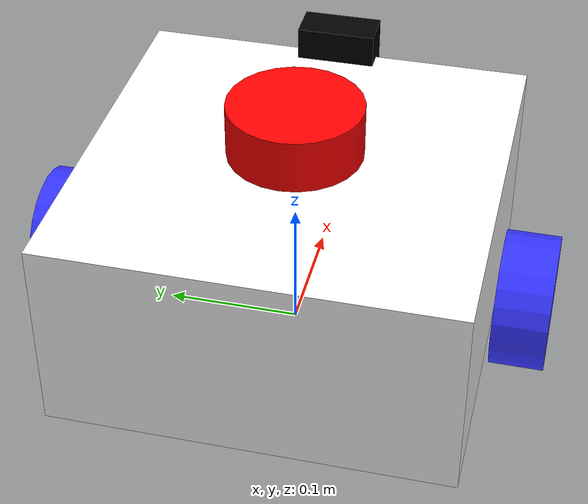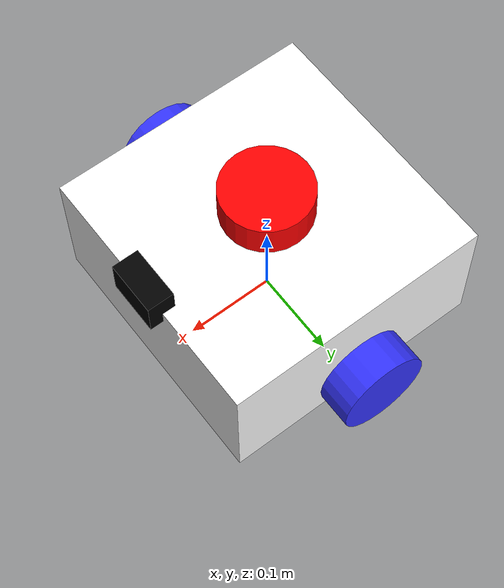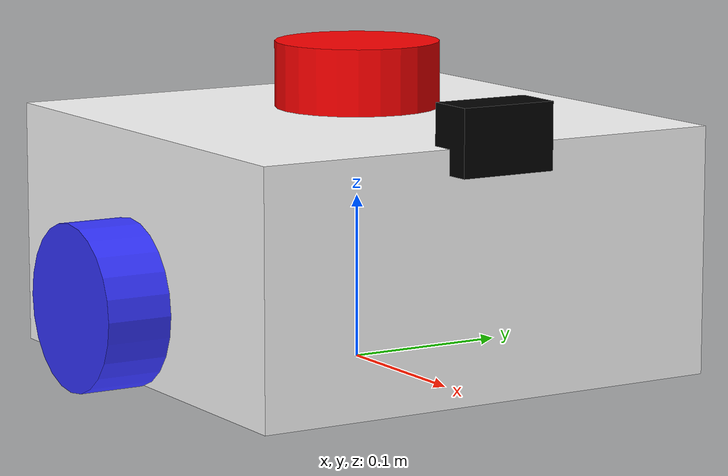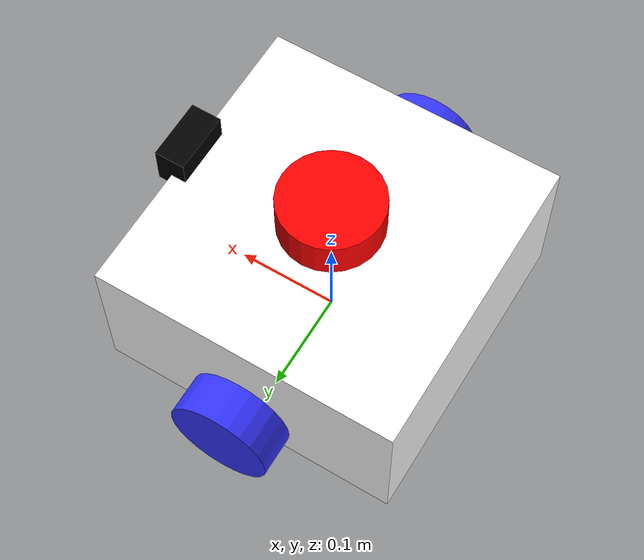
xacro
<?xml version="1.0"?>
<robot xmlns:xacro="http://www.ros.org/wiki/xacro"  name="robot">

    <xacro:include filename="robot_core.xacro"/>
    <xacro:include filename="gazebo_control.xacro" />

    <xacro:include filename="lidar.xacro" />
    <xacro:include filename="depth_camera.xacro" />

</robot>

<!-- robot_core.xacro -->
<robot xmlns:xacro="http://www.ros.org/wiki/xacro">

  <!-- Materials -->
  <material name="white"><color rgba="1 1 1 1"/></material>
  <material name="blue"><color rgba="0.2 0.2 1 1"/></material>
  <material name="black"><color rgba="0 0 0 1"/></material>

  <!-- Base -->
  <link name="base_link"/>

  <!-- BASE_FOOTPRINT LINK -->

    <joint name="base_footprint_joint" type="fixed">
        <parent link="base_link"/>
        <child link="base_footprint"/>
        <origin xyz="0 0 0.3" rpy="0 0 0"/>
    </joint>

    <link name="base_footprint">
    </link>

  <!-- Chassis -->
  <joint name="chassis_joint" type="fixed">
    <parent link="base_link"/>
    <child link="chassis"/>
    <origin xyz="0 0 0.075"/>
  </joint>

  <link name="chassis">
    <visual>
      <geometry><box size="0.3 0.3 0.15"/></geometry>
      <material name="white"/>
    </visual>
    <collision>
      <geometry><box size="0.3 0.3 0.15"/></geometry>
    </collision>
    <inertial>
      <mass value="1.0"/>
      <inertia ixx="0.02" ixy="0" ixz="0"
               iyy="0.02" iyz="0"
               izz="0.02"/>
    </inertial>
  </link>

  <!-- Left wheel -->
  <joint name="left_wheel_joint" type="continuous">
    <parent link="base_link"/>
    <child link="left_wheel"/>
    <origin xyz="0 0.175 0.05" rpy="1.5708 0 0"/>
    <axis xyz="0 0 1"/>
  </joint>

  <link name="left_wheel">
    <visual>
      <geometry><cylinder radius="0.05" length="0.04"/></geometry>
      <material name="blue"/>
    </visual>
    <collision>
      <geometry><cylinder radius="0.05" length="0.04"/></geometry>
    </collision>
    <inertial>
      <mass value="0.1"/>
      <inertia ixx="0.0002" ixy="0" ixz="0"
               iyy="0.0002" iyz="0"
               izz="0.0002"/>
    </inertial>
  </link>

  <!-- Right wheel -->
  <joint name="right_wheel_joint" type="continuous">
    <parent link="base_link"/>
    <child link="right_wheel"/>
    <origin xyz="0 -0.175 0.05" rpy="-1.5708 0 0"/>
    <axis xyz="0 0 1"/>
  </joint>

  <link name="right_wheel">
    <visual>
      <geometry><cylinder radius="0.05" length="0.04"/></geometry>
      <material name="blue"/>
    </visual>
    <collision>
      <geometry><cylinder radius="0.05" length="0.04"/></geometry>
    </collision>
    <inertial>
      <mass value="0.1"/>
      <inertia ixx="0.0002" ixy="0" ixz="0"
               iyy="0.0002" iyz="0"
               izz="0.0002"/>
    </inertial>
  </link>

  <!-- Gazebo Classic Diff Drive Plugin -->
  <gazebo>
    <plugin name="diff_drive" filename="libgazebo_ros_diff_drive.so">
        <update_rate>50</update_rate>
        <left_joint>left_wheel_joint</left_joint>
        <right_joint>right_wheel_joint</right_joint>
        <wheel_separation>0.35</wheel_separation>
        <wheel_diameter>0.10</wheel_diameter>
        <max_wheel_torque>20</max_wheel_torque>
        <command_topic>cmd_vel</command_topic>
        <publish_odom>true</publish_odom>
        <publish_odom_tf>true</publish_odom_tf>
        <publish_wheel_tf>true</publish_wheel_tf>
        <odometry_topic>odom</odometry_topic>
        <odometry_frame>odom</odometry_frame>
        <robot_base_frame>base_link</robot_base_frame>
    </plugin>
  </gazebo>

  <!-- Gazebo properties for chassis -->
  <gazebo reference="chassis">
      <material>Gazebo/White</material>
      <mu1>0.2</mu1>
      <mu2>0.2</mu2>
  </gazebo>

  <!-- Gazebo properties for left wheel -->
  <gazebo reference="left_wheel">
      <material>Gazebo/Blue</material>
      <mu1>100.0</mu1>
      <mu2>100.0</mu2>
      <kp>10000000.0</kp>
      <kd>1.0</kd>
      <fdir1>1 0 0</fdir1>
  </gazebo>

  <!-- Gazebo properties for right wheel -->
  <gazebo reference="right_wheel">
      <material>Gazebo/Blue</material>
      <mu1>100.0</mu1>
      <mu2>100.0</mu2>
      <kp>10000000.0</kp>
      <kd>1.0</kd>
      <fdir1>1 0 0</fdir1>
  </gazebo>

</robot>

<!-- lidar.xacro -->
<robot xmlns:xacro="http://www.ros.org/wiki/xacro">

    <material name="red">
        <color rgba="1 0 0 1" />
    </material>

    <link name="laser_frame">
        <visual>
            <geometry>
                <cylinder radius="0.05" length="0.04" />
            </geometry>
            <material name="red" />
        </visual>
        <collision>
            <geometry>
                <cylinder radius="0.05" length="0.04" />
            </geometry>
        </collision>
        <inertial>
            <mass value="0.125" />
            <inertia ixx="0.001" ixy="0.0" ixz="0.0" iyy="0.001" iyz="0.0" izz="0.001"/>
        </inertial>
    </link>

    <joint name="laser_joint" type="fixed">
        <parent link="chassis" />
        <child link="laser_frame" />
        <origin xyz="0.0 0.0 0.1" rpy="0 0 0" />
    </joint>

    <!-- Gazebo Classic Lidar Plugin -->
    <gazebo reference="laser_frame">
        <sensor type="ray" name="laser_sensor">
            <pose>0 0 0 0 0 0</pose>
            <visualize>false</visualize>
            <update_rate>10</update_rate>
            <ray>
                <scan>
                    <horizontal>
                        <samples>360</samples>
                        <resolution>1</resolution>
                        <min_angle>-3.14159</min_angle>
                        <max_angle>3.14159</max_angle>
                    </horizontal>
                </scan>
                <range>
                    <min>0.12</min>
                    <max>10.0</max>
                    <resolution>0.01</resolution>
                </range>
                <noise>
                    <type>gaussian</type>
                    <mean>0.0</mean>
                    <stddev>0.01</stddev>
                </noise>
            </ray>
            <plugin name="gazebo_ros_laser" filename="libgazebo_ros_ray_sensor.so">
                <ros>
                    <remapping>~/out:=scan</remapping>
                </ros>
                <output_type>sensor_msgs/LaserScan</output_type>
                <frame_name>laser_frame</frame_name>
            </plugin>
        </sensor>
    </gazebo>

</robot>

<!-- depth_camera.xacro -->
<robot xmlns:xacro="http://www.ros.org/wiki/xacro">

    <joint name="camera_joint" type="fixed">
        <parent link="chassis"/>
        <child link="camera_link"/>
        <origin xyz="0.15 0 0.08" rpy="0 0 0"/>
    </joint>

    <link name="camera_link">
        <visual>
            <geometry>
                <box size="0.03 0.06 0.04"/>
            </geometry>
            <material name="black"/>
        </visual>
        <collision>
            <geometry>
                <box size="0.03 0.06 0.04"/>
            </geometry>
        </collision>
        <inertial>
            <mass value="0.1"/>
            <inertia ixx="0.0001" ixy="0.0" ixz="0.0"
                     iyy="0.0001" iyz="0.0" izz="0.0001"/>
        </inertial>
    </link>

    <joint name="camera_optical_joint" type="fixed">
        <parent link="camera_link"/>
        <child link="camera_link_optical"/>
        <origin xyz="0 0 0" rpy="-1.5708 0 -1.5708"/>
    </joint>

    <link name="camera_link_optical"></link>

    <gazebo reference="camera_link">
        <material>Gazebo/Black</material>

        <sensor name="camera" type="depth">
            <pose>0 0 0 0 0 0</pose>
            <visualize>true</visualize>
            <update_rate>10</update_rate>
            <camera>
                <horizontal_fov>1.089</horizontal_fov>
                <image>
                    <format>B8G8R8</format>
                    <width>640</width>
                    <height>480</height>
                </image>
                <clip>
                    <near>0.05</near>
                    <far>8.0</far>
                </clip>
            </camera>
            <plugin name="camera_controller" filename="libgazebo_ros_camera.so">
                <frame_name>camera_link_optical</frame_name>
                <min_depth>0.01</min_depth>
                <max_depth>100</max_depth>
            </plugin>
        </sensor>
    </gazebo>

</robot>
